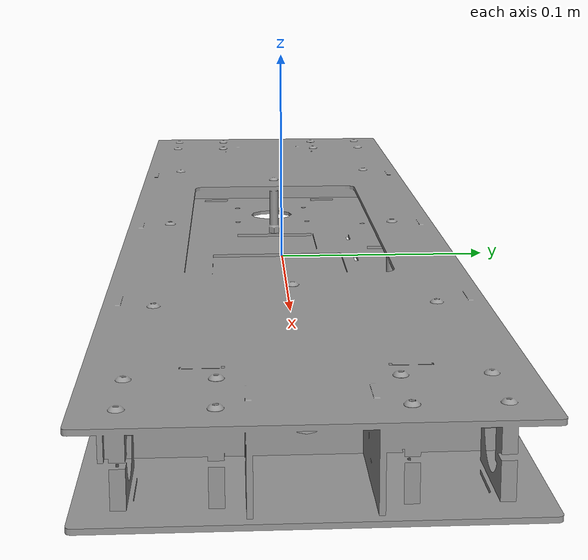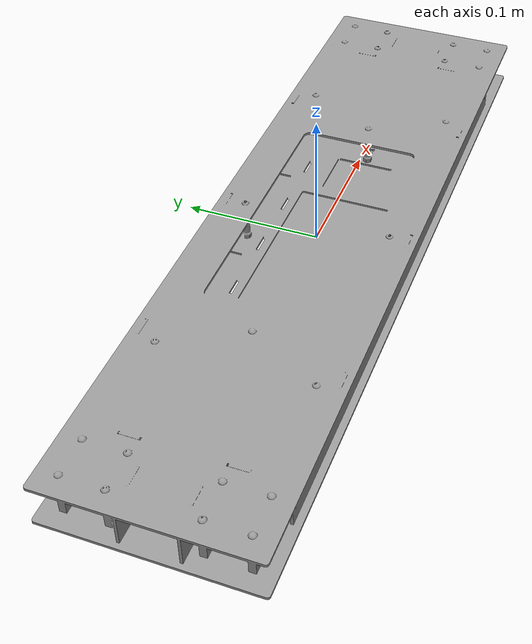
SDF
<?xml version="1.0" ?>

  <sdf version="1.5">
    <model name="arduwoodpecker_platform">

      <link name="platform_base">
      <pose>0 0 0.0  0 0 0</pose>
      <inertial>
        <pose>0 0 0 0 0 0</pose>
        <mass>2.5</mass>
        <inertia>
          <ixx>0.5</ixx>
          <iyy>0.5</iyy>
          <izz>0.2</izz>
          <ixy>0</ixy>
          <ixz>0</ixz>
          <iyz>0</iyz>
        </inertia>
      </inertial>
      <collision name="platform_base_collision">
        <pose>0 0 0  0 0 0</pose>
        <geometry>
          <box>
            <size>0.558 0.148 0.034</size>
          </box>
        </geometry>
        <surface>
          <contact>
            <ode>
              <max_vel>100.0</max_vel>
              <min_depth>0.001</min_depth>
            </ode>
          </contact>
          <friction>
            <ode>
              <mu>100000.0</mu>
              <mu2>100000.0</mu2>
            </ode>
          </friction>
        </surface>
      </collision>
      <visual name="platform_base_visual">
        <geometry>
          <mesh>
            <uri>model://arduwoodpecker_platform/meshes/platform_base.STL</uri>
          </mesh>
        </geometry>
        <material>
          <script>
            <name>Gazebo/Grey</name>
          </script>
        </material>
      </visual>
    </link>
    <link name='imu_link'>
    <inertial>
      <pose>0 0 0 0 0 0</pose>
      <mass>0.15</mass>
      <inertia>
        <ixx>0.00001</ixx>
        <ixy>0</ixy>
        <ixz>0</ixz>
        <iyy>0.00002</iyy>
        <iyz>0</iyz>
        <izz>0.00002</izz>
      </inertia>
    </inertial>
    <sensor name="imu_sensor" type="imu">
      <pose>0 0 0 3.141593 0 0</pose>
      <always_on>1</always_on>
      <update_rate>1000.0</update_rate>
      <topic>__default_topic__</topic>
    </sensor>
  </link>
  <joint name='imu_joint' type='revolute'>
    <child>imu_link</child>
    <parent>platform_base</parent>
    <axis>
      <xyz>0 0 1</xyz>
      <limit>
        <lower>-0.0001</lower>
        <upper>0.00001</upper>
        <effort>0</effort>
        <velocity>0</velocity>
      </limit>
      <dynamics>
        <damping>1.0</damping>
      </dynamics>
      <use_parent_model_frame>1</use_parent_model_frame>
    </axis>
    <physics>
      <ode>
        <implicit_spring_damper>1</implicit_spring_damper>
      </ode>
    </physics>
  </joint>

</model>
</sdf>
